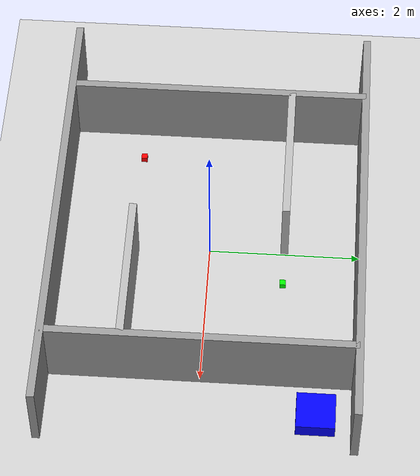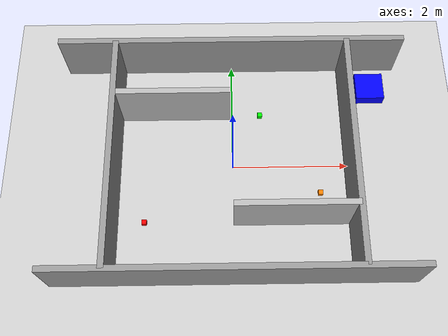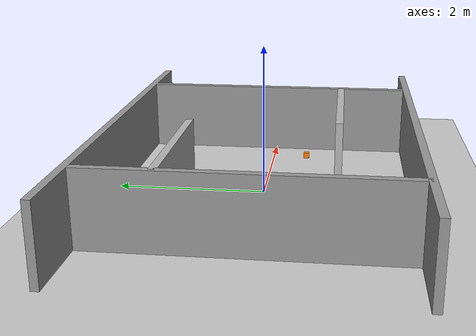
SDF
<sdf version="1.9">
 <world name="maze_world">
  <gravity>0 0 -9.81</gravity>
  <magnetic_field>6e-06 2.3e-05 -4.2e-05</magnetic_field>
  <plugin name="gz::sim::systems::Physics" filename="gz-sim-physics-system"/>
  <plugin name="gz::sim::systems::SceneBroadcaster" filename="gz-sim-scene-broadcaster-system"/>
  <light name="sun" type="directional">
   <pose>0 0 10 0 0 0</pose>
   <diffuse>0.8 0.8 0.8 1</diffuse>
   <specular>0.1 0.1 0.1 1</specular>
   <attenuation>
    <range>100</range>
    <constant>0.9</constant>
    <linear>0.01</linear>
    <quadratic>0.001</quadratic>
   </attenuation>
   <direction>-0.5 0.1 -1</direction>
  </light>
  <model name="ground_plane">
   <static>true</static>
   <link name="link">
    <collision name="collision">
     <geometry><plane><normal>0 0 1</normal><size>100 100</size></plane></geometry>
     <surface><friction><ode><mu>1.0</mu><mu2>1.0</mu2></ode></friction></surface>
    </collision>
    <visual name="visual">
     <geometry><plane><normal>0 0 1</normal><size>100 100</size></plane></geometry>
     <material><ambient>0.8 0.8 0.8 1</ambient><diffuse>0.8 0.8 0.8 1</diffuse></material>
    </visual>
   </link>
  </model>
  <model name="wall_long_1">
   <static>true</static>
   <pose>0 2 0.5 0 0 0</pose>
   <link name="link">
    <collision name="collision"><geometry><box><size>6 0.1 1.0</size></box></geometry></collision>
    <visual name="visual">
     <geometry><box><size>6 0.1 1.0</size></box></geometry>
     <material><diffuse>0.6 0.6 0.6 1</diffuse></material>
    </visual>
   </link>
  </model>
  <model name="wall_long_2">
   <static>true</static>
   <pose>0 -2 0.5 0 0 0</pose>
   <link name="link">
    <collision name="collision"><geometry><box><size>6 0.1 1.0</size></box></geometry></collision>
    <visual name="visual">
     <geometry><box><size>6 0.1 1.0</size></box></geometry>
     <material><diffuse>0.6 0.6 0.6 1</diffuse></material>
    </visual>
   </link>
  </model>
  <model name="wall_short_1">
   <static>true</static>
   <pose>-2 0 0.5 0 0 0</pose>
   <link name="link">
    <collision name="collision"><geometry><box><size>0.1 4 1.0</size></box></geometry></collision>
    <visual name="visual">
     <geometry><box><size>0.1 4 1.0</size></box></geometry>
     <material><diffuse>0.6 0.6 0.6 1</diffuse></material>
    </visual>
   </link>
  </model>
  <model name="wall_short_2">
   <static>true</static>
   <pose>2 0 0.5 0 0 0</pose>
   <link name="link">
    <collision name="collision"><geometry><box><size>0.1 4 1.0</size></box></geometry></collision>
    <visual name="visual">
     <geometry><box><size>0.1 4 1.0</size></box></geometry>
     <material><diffuse>0.6 0.6 0.6 1</diffuse></material>
    </visual>
   </link>
  </model>
  <model name="maze_wall_1">
   <static>true</static>
   <pose>-1 1 0.5 0 0 0</pose>
   <link name="link">
    <collision name="collision"><geometry><box><size>2 0.1 1.0</size></box></geometry></collision>
    <visual name="visual"><geometry><box><size>2 0.1 1.0</size></box></geometry></visual>
   </link>
  </model>
  <model name="maze_wall_2">
   <static>true</static>
   <pose>1 -1 0.5 0 0 0</pose>
   <link name="link">
    <collision name="collision"><geometry><box><size>2 0.1 1.0</size></box></geometry></collision>
    <visual name="visual"><geometry><box><size>2 0.1 1.0</size></box></geometry></visual>
   </link>
  </model>
  <model name="target_bin">
   <static>true</static>
   <pose>2.5 1.5 0.1 0 0 0</pose>
   <link name="link">
    <collision name="collision"><geometry><box><size>0.5 0.5 0.2</size></box></geometry></collision>
    <visual name="visual">
     <geometry><box><size>0.5 0.5 0.2</size></box></geometry>
     <material><diffuse>0 0 1 1</diffuse></material>
    </visual>
   </link>
  </model>
  <model name="object_red">
   <static>false</static>
   <pose>-1.5 -1.0 0.05 0 0 0</pose>
   <link name="link">
    <inertial><mass>0.1</mass></inertial>
    <collision name="collision"><geometry><box><size>0.08 0.08 0.08</size></box></geometry></collision>
    <visual name="visual">
     <geometry><box><size>0.08 0.08 0.08</size></box></geometry>
     <material><diffuse>1 0 0 1</diffuse></material>
    </visual>
   </link>
  </model>
  <model name="object_green">
   <static>false</static>
   <pose>0.5 1.0 0.05 0 0 0</pose>
   <link name="link">
    <inertial><mass>0.1</mass></inertial>
    <collision name="collision"><geometry><box><size>0.08 0.08 0.08</size></box></geometry></collision>
    <visual name="visual">
     <geometry><box><size>0.08 0.08 0.08</size></box></geometry>
     <material><diffuse>0 1 0 1</diffuse></material>
    </visual>
   </link>
  </model>
  <model name="object_orange">
   <static>false</static>
   <pose>1.5 -0.5 0.05 0 0 0</pose>
   <link name="link">
    <inertial><mass>0.1</mass></inertial>
    <collision name="collision"><geometry><box><size>0.08 0.08 0.08</size></box></geometry></collision>
    <visual name="visual">
     <geometry><box><size>0.08 0.08 0.08</size></box></geometry>
     <material><diffuse>1 0.5 0 1</diffuse></material>
    </visual>
   </link>
  </model>
 </world>
</sdf>
